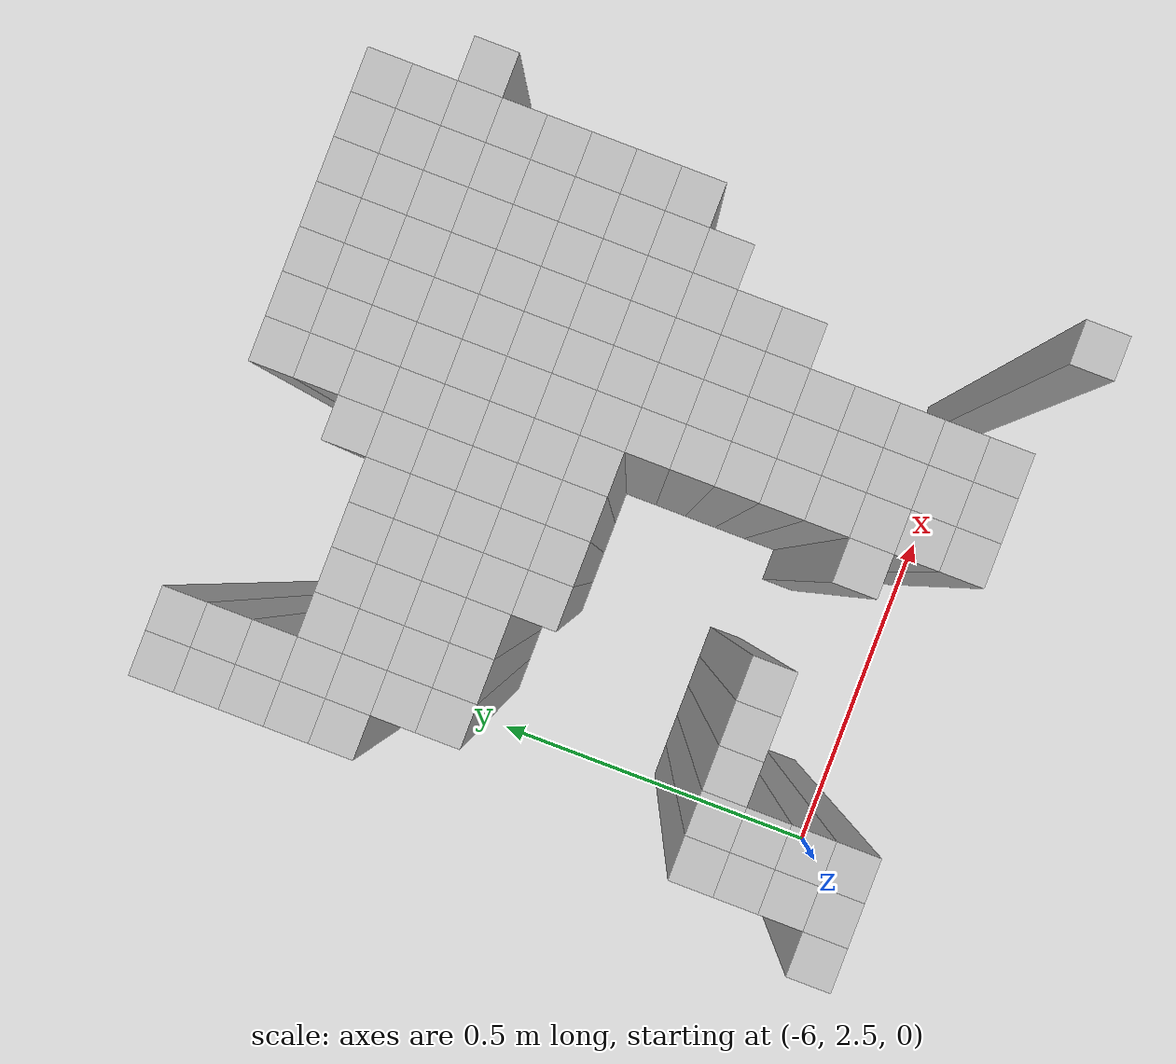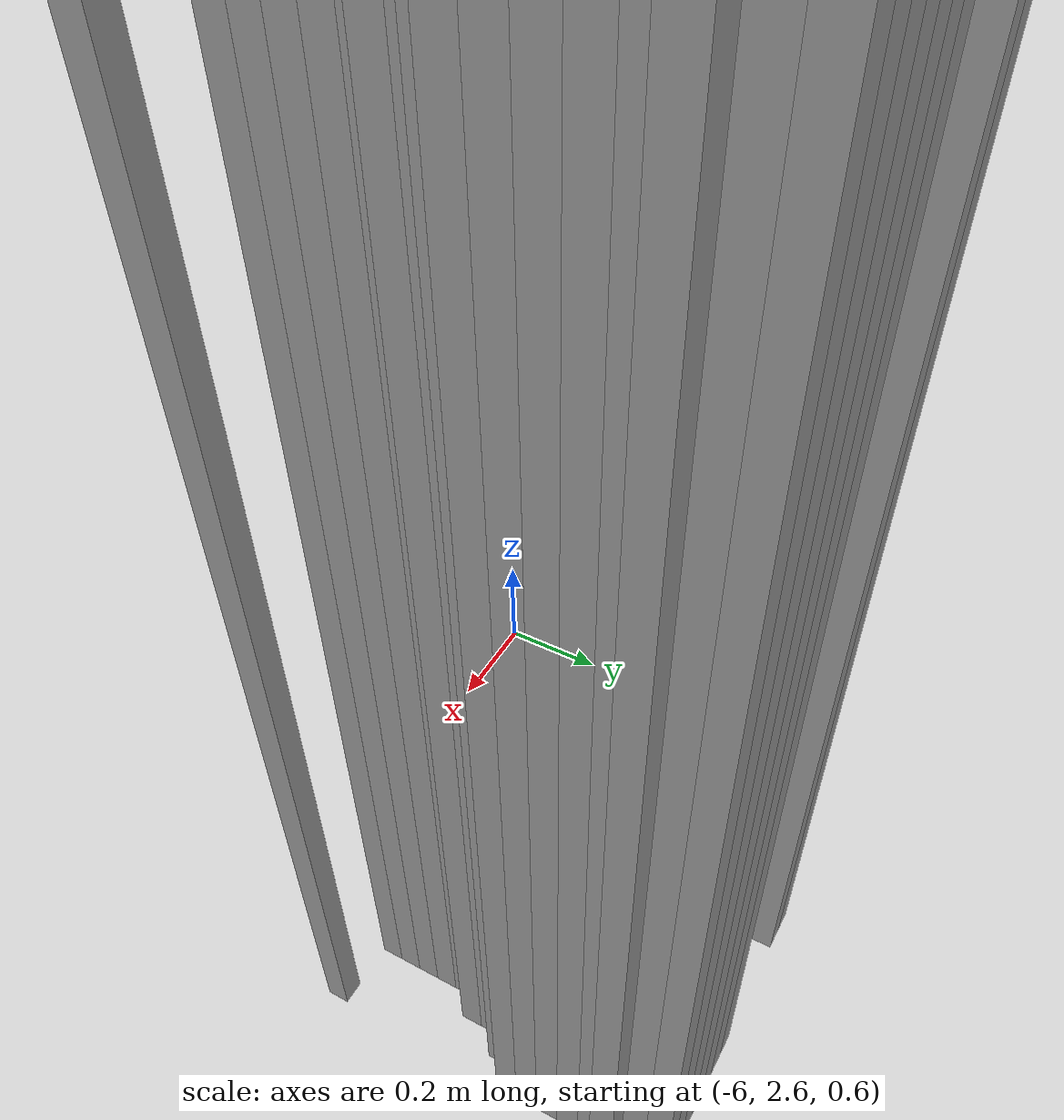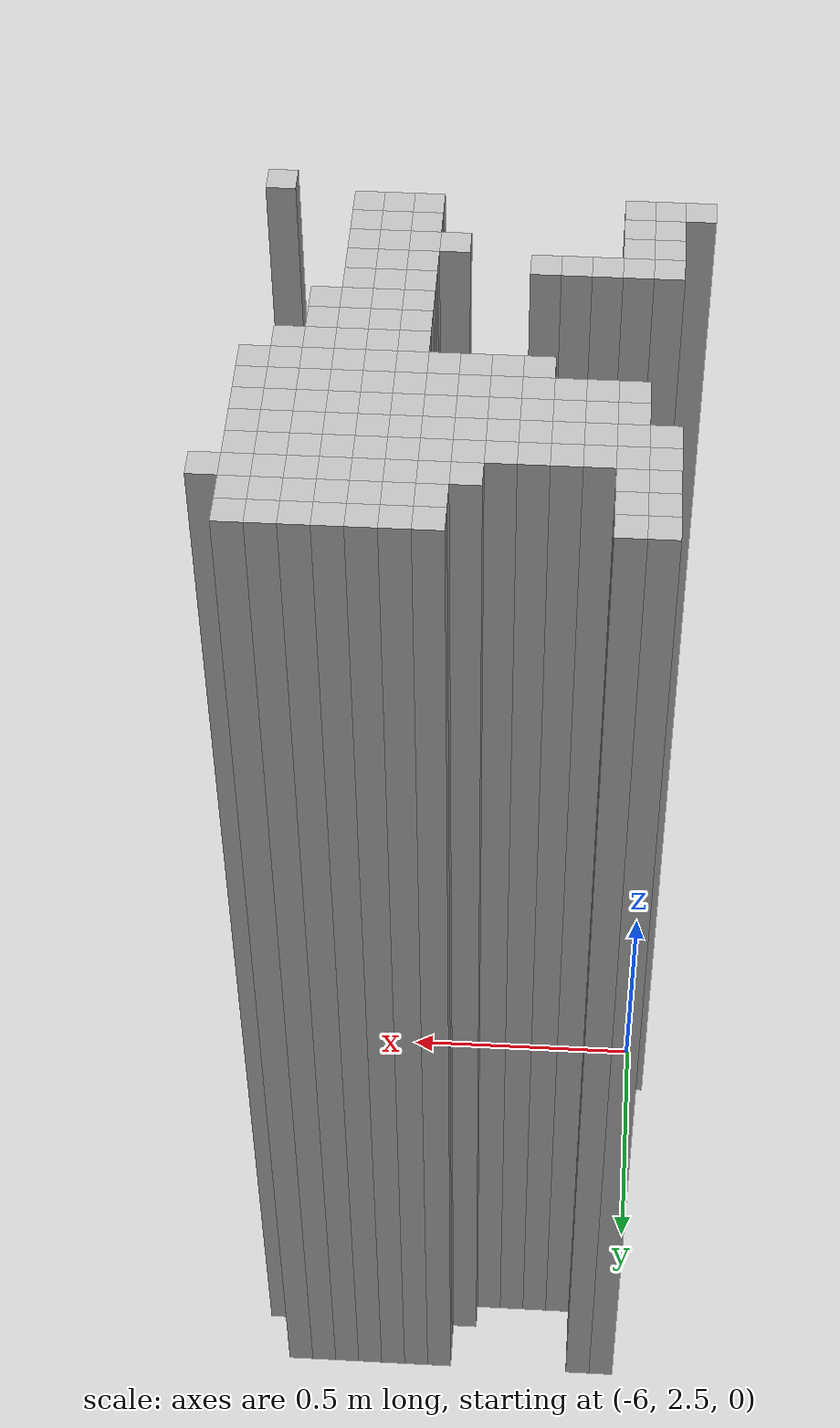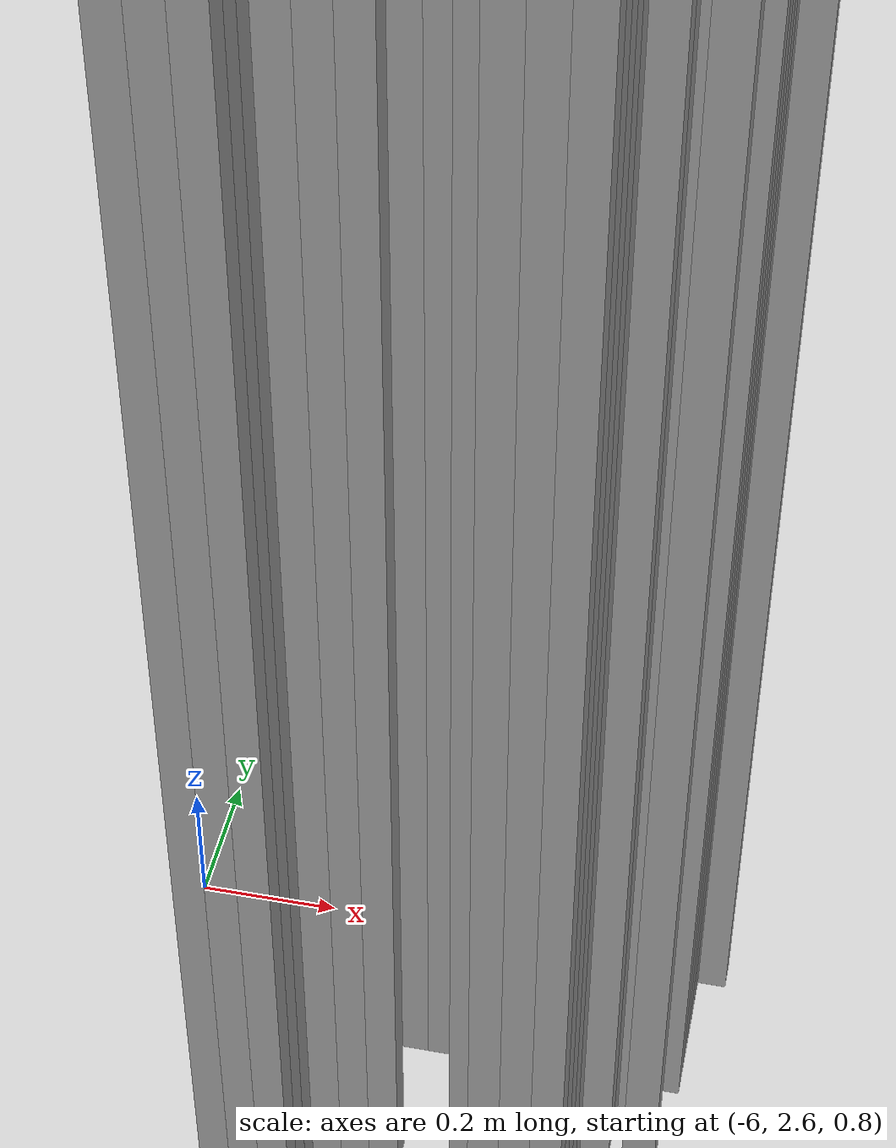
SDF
<sdf version="1.9">
 <world name="map_world">
  <model name="wall_104_87">
   <static>true</static>
   <pose>-5.961 3.330 1.250 0 0 0</pose>
   <link name="link">
    <collision name="collision"><geometry><box><size>0.050 0.050 2.500</size></box></geometry></collision>
    <visual name="visual"><geometry><box><size>0.050 0.050 2.500</size></box></geometry></visual>
   </link>
  </model>
  <model name="wall_105_87">
   <static>true</static>
   <pose>-5.911 3.330 1.250 0 0 0</pose>
   <link name="link">
    <collision name="collision"><geometry><box><size>0.050 0.050 2.500</size></box></geometry></collision>
    <visual name="visual"><geometry><box><size>0.050 0.050 2.500</size></box></geometry></visual>
   </link>
  </model>
  <model name="wall_111_87">
   <static>true</static>
   <pose>-5.611 3.330 1.250 0 0 0</pose>
   <link name="link">
    <collision name="collision"><geometry><box><size>0.050 0.050 2.500</size></box></geometry></collision>
    <visual name="visual"><geometry><box><size>0.050 0.050 2.500</size></box></geometry></visual>
   </link>
  </model>
  <model name="wall_112_87">
   <static>true</static>
   <pose>-5.561 3.330 1.250 0 0 0</pose>
   <link name="link">
    <collision name="collision"><geometry><box><size>0.050 0.050 2.500</size></box></geometry></collision>
    <visual name="visual"><geometry><box><size>0.050 0.050 2.500</size></box></geometry></visual>
   </link>
  </model>
  <model name="wall_113_87">
   <static>true</static>
   <pose>-5.511 3.330 1.250 0 0 0</pose>
   <link name="link">
    <collision name="collision"><geometry><box><size>0.050 0.050 2.500</size></box></geometry></collision>
    <visual name="visual"><geometry><box><size>0.050 0.050 2.500</size></box></geometry></visual>
   </link>
  </model>
  <model name="wall_114_87">
   <static>true</static>
   <pose>-5.461 3.330 1.250 0 0 0</pose>
   <link name="link">
    <collision name="collision"><geometry><box><size>0.050 0.050 2.500</size></box></geometry></collision>
    <visual name="visual"><geometry><box><size>0.050 0.050 2.500</size></box></geometry></visual>
   </link>
  </model>
  <model name="wall_115_87">
   <static>true</static>
   <pose>-5.411 3.330 1.250 0 0 0</pose>
   <link name="link">
    <collision name="collision"><geometry><box><size>0.050 0.050 2.500</size></box></geometry></collision>
    <visual name="visual"><geometry><box><size>0.050 0.050 2.500</size></box></geometry></visual>
   </link>
  </model>
  <model name="wall_116_87">
   <static>true</static>
   <pose>-5.361 3.330 1.250 0 0 0</pose>
   <link name="link">
    <collision name="collision"><geometry><box><size>0.050 0.050 2.500</size></box></geometry></collision>
    <visual name="visual"><geometry><box><size>0.050 0.050 2.500</size></box></geometry></visual>
   </link>
  </model>
  <model name="wall_117_87">
   <static>true</static>
   <pose>-5.311 3.330 1.250 0 0 0</pose>
   <link name="link">
    <collision name="collision"><geometry><box><size>0.050 0.050 2.500</size></box></geometry></collision>
    <visual name="visual"><geometry><box><size>0.050 0.050 2.500</size></box></geometry></visual>
   </link>
  </model>
  <model name="wall_104_88">
   <static>true</static>
   <pose>-5.961 3.280 1.250 0 0 0</pose>
   <link name="link">
    <collision name="collision"><geometry><box><size>0.050 0.050 2.500</size></box></geometry></collision>
    <visual name="visual"><geometry><box><size>0.050 0.050 2.500</size></box></geometry></visual>
   </link>
  </model>
  <model name="wall_105_88">
   <static>true</static>
   <pose>-5.911 3.280 1.250 0 0 0</pose>
   <link name="link">
    <collision name="collision"><geometry><box><size>0.050 0.050 2.500</size></box></geometry></collision>
    <visual name="visual"><geometry><box><size>0.050 0.050 2.500</size></box></geometry></visual>
   </link>
  </model>
  <model name="wall_111_88">
   <static>true</static>
   <pose>-5.611 3.280 1.250 0 0 0</pose>
   <link name="link">
    <collision name="collision"><geometry><box><size>0.050 0.050 2.500</size></box></geometry></collision>
    <visual name="visual"><geometry><box><size>0.050 0.050 2.500</size></box></geometry></visual>
   </link>
  </model>
  <model name="wall_112_88">
   <static>true</static>
   <pose>-5.561 3.280 1.250 0 0 0</pose>
   <link name="link">
    <collision name="collision"><geometry><box><size>0.050 0.050 2.500</size></box></geometry></collision>
    <visual name="visual"><geometry><box><size>0.050 0.050 2.500</size></box></geometry></visual>
   </link>
  </model>
  <model name="wall_113_88">
   <static>true</static>
   <pose>-5.511 3.280 1.250 0 0 0</pose>
   <link name="link">
    <collision name="collision"><geometry><box><size>0.050 0.050 2.500</size></box></geometry></collision>
    <visual name="visual"><geometry><box><size>0.050 0.050 2.500</size></box></geometry></visual>
   </link>
  </model>
  <model name="wall_114_88">
   <static>true</static>
   <pose>-5.461 3.280 1.250 0 0 0</pose>
   <link name="link">
    <collision name="collision"><geometry><box><size>0.050 0.050 2.500</size></box></geometry></collision>
    <visual name="visual"><geometry><box><size>0.050 0.050 2.500</size></box></geometry></visual>
   </link>
  </model>
  <model name="wall_115_88">
   <static>true</static>
   <pose>-5.411 3.280 1.250 0 0 0</pose>
   <link name="link">
    <collision name="collision"><geometry><box><size>0.050 0.050 2.500</size></box></geometry></collision>
    <visual name="visual"><geometry><box><size>0.050 0.050 2.500</size></box></geometry></visual>
   </link>
  </model>
  <model name="wall_116_88">
   <static>true</static>
   <pose>-5.361 3.280 1.250 0 0 0</pose>
   <link name="link">
    <collision name="collision"><geometry><box><size>0.050 0.050 2.500</size></box></geometry></collision>
    <visual name="visual"><geometry><box><size>0.050 0.050 2.500</size></box></geometry></visual>
   </link>
  </model>
  <model name="wall_117_88">
   <static>true</static>
   <pose>-5.311 3.280 1.250 0 0 0</pose>
   <link name="link">
    <collision name="collision"><geometry><box><size>0.050 0.050 2.500</size></box></geometry></collision>
    <visual name="visual"><geometry><box><size>0.050 0.050 2.500</size></box></geometry></visual>
   </link>
  </model>
  <model name="wall_104_89">
   <static>true</static>
   <pose>-5.961 3.230 1.250 0 0 0</pose>
   <link name="link">
    <collision name="collision"><geometry><box><size>0.050 0.050 2.500</size></box></geometry></collision>
    <visual name="visual"><geometry><box><size>0.050 0.050 2.500</size></box></geometry></visual>
   </link>
  </model>
  <model name="wall_105_89">
   <static>true</static>
   <pose>-5.911 3.230 1.250 0 0 0</pose>
   <link name="link">
    <collision name="collision"><geometry><box><size>0.050 0.050 2.500</size></box></geometry></collision>
    <visual name="visual"><geometry><box><size>0.050 0.050 2.500</size></box></geometry></visual>
   </link>
  </model>
  <model name="wall_110_89">
   <static>true</static>
   <pose>-5.661 3.230 1.250 0 0 0</pose>
   <link name="link">
    <collision name="collision"><geometry><box><size>0.050 0.050 2.500</size></box></geometry></collision>
    <visual name="visual"><geometry><box><size>0.050 0.050 2.500</size></box></geometry></visual>
   </link>
  </model>
  <model name="wall_111_89">
   <static>true</static>
   <pose>-5.611 3.230 1.250 0 0 0</pose>
   <link name="link">
    <collision name="collision"><geometry><box><size>0.050 0.050 2.500</size></box></geometry></collision>
    <visual name="visual"><geometry><box><size>0.050 0.050 2.500</size></box></geometry></visual>
   </link>
  </model>
  <model name="wall_112_89">
   <static>true</static>
   <pose>-5.561 3.230 1.250 0 0 0</pose>
   <link name="link">
    <collision name="collision"><geometry><box><size>0.050 0.050 2.500</size></box></geometry></collision>
    <visual name="visual"><geometry><box><size>0.050 0.050 2.500</size></box></geometry></visual>
   </link>
  </model>
  <model name="wall_113_89">
   <static>true</static>
   <pose>-5.511 3.230 1.250 0 0 0</pose>
   <link name="link">
    <collision name="collision"><geometry><box><size>0.050 0.050 2.500</size></box></geometry></collision>
    <visual name="visual"><geometry><box><size>0.050 0.050 2.500</size></box></geometry></visual>
   </link>
  </model>
  <model name="wall_114_89">
   <static>true</static>
   <pose>-5.461 3.230 1.250 0 0 0</pose>
   <link name="link">
    <collision name="collision"><geometry><box><size>0.050 0.050 2.500</size></box></geometry></collision>
    <visual name="visual"><geometry><box><size>0.050 0.050 2.500</size></box></geometry></visual>
   </link>
  </model>
  <model name="wall_115_89">
   <static>true</static>
   <pose>-5.411 3.230 1.250 0 0 0</pose>
   <link name="link">
    <collision name="collision"><geometry><box><size>0.050 0.050 2.500</size></box></geometry></collision>
    <visual name="visual"><geometry><box><size>0.050 0.050 2.500</size></box></geometry></visual>
   </link>
  </model>
  <model name="wall_116_89">
   <static>true</static>
   <pose>-5.361 3.230 1.250 0 0 0</pose>
   <link name="link">
    <collision name="collision"><geometry><box><size>0.050 0.050 2.500</size></box></geometry></collision>
    <visual name="visual"><geometry><box><size>0.050 0.050 2.500</size></box></geometry></visual>
   </link>
  </model>
  <model name="wall_117_89">
   <static>true</static>
   <pose>-5.311 3.230 1.250 0 0 0</pose>
   <link name="link">
    <collision name="collision"><geometry><box><size>0.050 0.050 2.500</size></box></geometry></collision>
    <visual name="visual"><geometry><box><size>0.050 0.050 2.500</size></box></geometry></visual>
   </link>
  </model>
  <model name="wall_118_89">
   <static>true</static>
   <pose>-5.261 3.230 1.250 0 0 0</pose>
   <link name="link">
    <collision name="collision"><geometry><box><size>0.050 0.050 2.500</size></box></geometry></collision>
    <visual name="visual"><geometry><box><size>0.050 0.050 2.500</size></box></geometry></visual>
   </link>
  </model>
  <model name="wall_104_90">
   <static>true</static>
   <pose>-5.961 3.180 1.250 0 0 0</pose>
   <link name="link">
    <collision name="collision"><geometry><box><size>0.050 0.050 2.500</size></box></geometry></collision>
    <visual name="visual"><geometry><box><size>0.050 0.050 2.500</size></box></geometry></visual>
   </link>
  </model>
  <model name="wall_105_90">
   <static>true</static>
   <pose>-5.911 3.180 1.250 0 0 0</pose>
   <link name="link">
    <collision name="collision"><geometry><box><size>0.050 0.050 2.500</size></box></geometry></collision>
    <visual name="visual"><geometry><box><size>0.050 0.050 2.500</size></box></geometry></visual>
   </link>
  </model>
  <model name="wall_106_90">
   <static>true</static>
   <pose>-5.861 3.180 1.250 0 0 0</pose>
   <link name="link">
    <collision name="collision"><geometry><box><size>0.050 0.050 2.500</size></box></geometry></collision>
    <visual name="visual"><geometry><box><size>0.050 0.050 2.500</size></box></geometry></visual>
   </link>
  </model>
  <model name="wall_107_90">
   <static>true</static>
   <pose>-5.811 3.180 1.250 0 0 0</pose>
   <link name="link">
    <collision name="collision"><geometry><box><size>0.050 0.050 2.500</size></box></geometry></collision>
    <visual name="visual"><geometry><box><size>0.050 0.050 2.500</size></box></geometry></visual>
   </link>
  </model>
  <model name="wall_108_90">
   <static>true</static>
   <pose>-5.761 3.180 1.250 0 0 0</pose>
   <link name="link">
    <collision name="collision"><geometry><box><size>0.050 0.050 2.500</size></box></geometry></collision>
    <visual name="visual"><geometry><box><size>0.050 0.050 2.500</size></box></geometry></visual>
   </link>
  </model>
  <model name="wall_109_90">
   <static>true</static>
   <pose>-5.711 3.180 1.250 0 0 0</pose>
   <link name="link">
    <collision name="collision"><geometry><box><size>0.050 0.050 2.500</size></box></geometry></collision>
    <visual name="visual"><geometry><box><size>0.050 0.050 2.500</size></box></geometry></visual>
   </link>
  </model>
  <model name="wall_110_90">
   <static>true</static>
   <pose>-5.661 3.180 1.250 0 0 0</pose>
   <link name="link">
    <collision name="collision"><geometry><box><size>0.050 0.050 2.500</size></box></geometry></collision>
    <visual name="visual"><geometry><box><size>0.050 0.050 2.500</size></box></geometry></visual>
   </link>
  </model>
  <model name="wall_111_90">
   <static>true</static>
   <pose>-5.611 3.180 1.250 0 0 0</pose>
   <link name="link">
    <collision name="collision"><geometry><box><size>0.050 0.050 2.500</size></box></geometry></collision>
    <visual name="visual"><geometry><box><size>0.050 0.050 2.500</size></box></geometry></visual>
   </link>
  </model>
  <model name="wall_112_90">
   <static>true</static>
   <pose>-5.561 3.180 1.250 0 0 0</pose>
   <link name="link">
    <collision name="collision"><geometry><box><size>0.050 0.050 2.500</size></box></geometry></collision>
    <visual name="visual"><geometry><box><size>0.050 0.050 2.500</size></box></geometry></visual>
   </link>
  </model>
  <model name="wall_113_90">
   <static>true</static>
   <pose>-5.511 3.180 1.250 0 0 0</pose>
   <link name="link">
    <collision name="collision"><geometry><box><size>0.050 0.050 2.500</size></box></geometry></collision>
    <visual name="visual"><geometry><box><size>0.050 0.050 2.500</size></box></geometry></visual>
   </link>
  </model>
  <model name="wall_114_90">
   <static>true</static>
   <pose>-5.461 3.180 1.250 0 0 0</pose>
   <link name="link">
    <collision name="collision"><geometry><box><size>0.050 0.050 2.500</size></box></geometry></collision>
    <visual name="visual"><geometry><box><size>0.050 0.050 2.500</size></box></geometry></visual>
   </link>
  </model>
  <model name="wall_115_90">
   <static>true</static>
   <pose>-5.411 3.180 1.250 0 0 0</pose>
   <link name="link">
    <collision name="collision"><geometry><box><size>0.050 0.050 2.500</size></box></geometry></collision>
    <visual name="visual"><geometry><box><size>0.050 0.050 2.500</size></box></geometry></visual>
   </link>
  </model>
  <model name="wall_116_90">
   <static>true</static>
   <pose>-5.361 3.180 1.250 0 0 0</pose>
   <link name="link">
    <collision name="collision"><geometry><box><size>0.050 0.050 2.500</size></box></geometry></collision>
    <visual name="visual"><geometry><box><size>0.050 0.050 2.500</size></box></geometry></visual>
   </link>
  </model>
  <model name="wall_117_90">
   <static>true</static>
   <pose>-5.311 3.180 1.250 0 0 0</pose>
   <link name="link">
    <collision name="collision"><geometry><box><size>0.050 0.050 2.500</size></box></geometry></collision>
    <visual name="visual"><geometry><box><size>0.050 0.050 2.500</size></box></geometry></visual>
   </link>
  </model>
  <model name="wall_104_91">
   <static>true</static>
   <pose>-5.961 3.130 1.250 0 0 0</pose>
   <link name="link">
    <collision name="collision"><geometry><box><size>0.050 0.050 2.500</size></box></geometry></collision>
    <visual name="visual"><geometry><box><size>0.050 0.050 2.500</size></box></geometry></visual>
   </link>
  </model>
  <model name="wall_105_91">
   <static>true</static>
   <pose>-5.911 3.130 1.250 0 0 0</pose>
   <link name="link">
    <collision name="collision"><geometry><box><size>0.050 0.050 2.500</size></box></geometry></collision>
    <visual name="visual"><geometry><box><size>0.050 0.050 2.500</size></box></geometry></visual>
   </link>
  </model>
  <model name="wall_106_91">
   <static>true</static>
   <pose>-5.861 3.130 1.250 0 0 0</pose>
   <link name="link">
    <collision name="collision"><geometry><box><size>0.050 0.050 2.500</size></box></geometry></collision>
    <visual name="visual"><geometry><box><size>0.050 0.050 2.500</size></box></geometry></visual>
   </link>
  </model>
  <model name="wall_107_91">
   <static>true</static>
   <pose>-5.811 3.130 1.250 0 0 0</pose>
   <link name="link">
    <collision name="collision"><geometry><box><size>0.050 0.050 2.500</size></box></geometry></collision>
    <visual name="visual"><geometry><box><size>0.050 0.050 2.500</size></box></geometry></visual>
   </link>
  </model>
  <model name="wall_108_91">
   <static>true</static>
   <pose>-5.761 3.130 1.250 0 0 0</pose>
   <link name="link">
    <collision name="collision"><geometry><box><size>0.050 0.050 2.500</size></box></geometry></collision>
    <visual name="visual"><geometry><box><size>0.050 0.050 2.500</size></box></geometry></visual>
   </link>
  </model>
  <model name="wall_109_91">
   <static>true</static>
   <pose>-5.711 3.130 1.250 0 0 0</pose>
   <link name="link">
    <collision name="collision"><geometry><box><size>0.050 0.050 2.500</size></box></geometry></collision>
    <visual name="visual"><geometry><box><size>0.050 0.050 2.500</size></box></geometry></visual>
   </link>
  </model>
  <model name="wall_110_91">
   <static>true</static>
   <pose>-5.661 3.130 1.250 0 0 0</pose>
   <link name="link">
    <collision name="collision"><geometry><box><size>0.050 0.050 2.500</size></box></geometry></collision>
    <visual name="visual"><geometry><box><size>0.050 0.050 2.500</size></box></geometry></visual>
   </link>
  </model>
  <model name="wall_111_91">
   <static>true</static>
   <pose>-5.611 3.130 1.250 0 0 0</pose>
   <link name="link">
    <collision name="collision"><geometry><box><size>0.050 0.050 2.500</size></box></geometry></collision>
    <visual name="visual"><geometry><box><size>0.050 0.050 2.500</size></box></geometry></visual>
   </link>
  </model>
  <model name="wall_112_91">
   <static>true</static>
   <pose>-5.561 3.130 1.250 0 0 0</pose>
   <link name="link">
    <collision name="collision"><geometry><box><size>0.050 0.050 2.500</size></box></geometry></collision>
    <visual name="visual"><geometry><box><size>0.050 0.050 2.500</size></box></geometry></visual>
   </link>
  </model>
  <model name="wall_113_91">
   <static>true</static>
   <pose>-5.511 3.130 1.250 0 0 0</pose>
   <link name="link">
    <collision name="collision"><geometry><box><size>0.050 0.050 2.500</size></box></geometry></collision>
    <visual name="visual"><geometry><box><size>0.050 0.050 2.500</size></box></geometry></visual>
   </link>
  </model>
  <model name="wall_114_91">
   <static>true</static>
   <pose>-5.461 3.130 1.250 0 0 0</pose>
   <link name="link">
    <collision name="collision"><geometry><box><size>0.050 0.050 2.500</size></box></geometry></collision>
    <visual name="visual"><geometry><box><size>0.050 0.050 2.500</size></box></geometry></visual>
   </link>
  </model>
  <model name="wall_115_91">
   <static>true</static>
   <pose>-5.411 3.130 1.250 0 0 0</pose>
   <link name="link">
    <collision name="collision"><geometry><box><size>0.050 0.050 2.500</size></box></geometry></collision>
    <visual name="visual"><geometry><box><size>0.050 0.050 2.500</size></box></geometry></visual>
   </link>
  </model>
  <model name="wall_116_91">
   <static>true</static>
   <pose>-5.361 3.130 1.250 0 0 0</pose>
   <link name="link">
    <collision name="collision"><geometry><box><size>0.050 0.050 2.500</size></box></geometry></collision>
    <visual name="visual"><geometry><box><size>0.050 0.050 2.500</size></box></geometry></visual>
   </link>
  </model>
  <model name="wall_117_91">
   <static>true</static>
   <pose>-5.311 3.130 1.250 0 0 0</pose>
   <link name="link">
    <collision name="collision"><geometry><box><size>0.050 0.050 2.500</size></box></geometry></collision>
    <visual name="visual"><geometry><box><size>0.050 0.050 2.500</size></box></geometry></visual>
   </link>
  </model>
  <model name="wall_105_92">
   <static>true</static>
   <pose>-5.911 3.080 1.250 0 0 0</pose>
   <link name="link">
    <collision name="collision"><geometry><box><size>0.050 0.050 2.500</size></box></geometry></collision>
    <visual name="visual"><geometry><box><size>0.050 0.050 2.500</size></box></geometry></visual>
   </link>
  </model>
  <model name="wall_106_92">
   <static>true</static>
   <pose>-5.861 3.080 1.250 0 0 0</pose>
   <link name="link">
    <collision name="collision"><geometry><box><size>0.050 0.050 2.500</size></box></geometry></collision>
    <visual name="visual"><geometry><box><size>0.050 0.050 2.500</size></box></geometry></visual>
   </link>
  </model>
  <model name="wall_107_92">
   <static>true</static>
   <pose>-5.811 3.080 1.250 0 0 0</pose>
   <link name="link">
    <collision name="collision"><geometry><box><size>0.050 0.050 2.500</size></box></geometry></collision>
    <visual name="visual"><geometry><box><size>0.050 0.050 2.500</size></box></geometry></visual>
   </link>
  </model>
  <model name="wall_108_92">
   <static>true</static>
   <pose>-5.761 3.080 1.250 0 0 0</pose>
   <link name="link">
    <collision name="collision"><geometry><box><size>0.050 0.050 2.500</size></box></geometry></collision>
    <visual name="visual"><geometry><box><size>0.050 0.050 2.500</size></box></geometry></visual>
   </link>
  </model>
  <model name="wall_109_92">
   <static>true</static>
   <pose>-5.711 3.080 1.250 0 0 0</pose>
   <link name="link">
    <collision name="collision"><geometry><box><size>0.050 0.050 2.500</size></box></geometry></collision>
    <visual name="visual"><geometry><box><size>0.050 0.050 2.500</size></box></geometry></visual>
   </link>
  </model>
  <model name="wall_110_92">
   <static>true</static>
   <pose>-5.661 3.080 1.250 0 0 0</pose>
   <link name="link">
    <collision name="collision"><geometry><box><size>0.050 0.050 2.500</size></box></geometry></collision>
    <visual name="visual"><geometry><box><size>0.050 0.050 2.500</size></box></geometry></visual>
   </link>
  </model>
  <model name="wall_111_92">
   <static>true</static>
   <pose>-5.611 3.080 1.250 0 0 0</pose>
   <link name="link">
    <collision name="collision"><geometry><box><size>0.050 0.050 2.500</size></box></geometry></collision>
    <visual name="visual"><geometry><box><size>0.050 0.050 2.500</size></box></geometry></visual>
   </link>
  </model>
  <model name="wall_112_92">
   <static>true</static>
   <pose>-5.561 3.080 1.250 0 0 0</pose>
   <link name="link">
    <collision name="collision"><geometry><box><size>0.050 0.050 2.500</size></box></geometry></collision>
    <visual name="visual"><geometry><box><size>0.050 0.050 2.500</size></box></geometry></visual>
   </link>
  </model>
  <model name="wall_113_92">
   <static>true</static>
   <pose>-5.511 3.080 1.250 0 0 0</pose>
   <link name="link">
    <collision name="collision"><geometry><box><size>0.050 0.050 2.500</size></box></geometry></collision>
    <visual name="visual"><geometry><box><size>0.050 0.050 2.500</size></box></geometry></visual>
   </link>
  </model>
  <model name="wall_114_92">
   <static>true</static>
   <pose>-5.461 3.080 1.250 0 0 0</pose>
   <link name="link">
    <collision name="collision"><geometry><box><size>0.050 0.050 2.500</size></box></geometry></collision>
    <visual name="visual"><geometry><box><size>0.050 0.050 2.500</size></box></geometry></visual>
   </link>
  </model>
  <model name="wall_115_92">
   <static>true</static>
   <pose>-5.411 3.080 1.250 0 0 0</pose>
   <link name="link">
    <collision name="collision"><geometry><box><size>0.050 0.050 2.500</size></box></geometry></collision>
    <visual name="visual"><geometry><box><size>0.050 0.050 2.500</size></box></geometry></visual>
   </link>
  </model>
  <model name="wall_116_92">
   <static>true</static>
   <pose>-5.361 3.080 1.250 0 0 0</pose>
   <link name="link">
    <collision name="collision"><geometry><box><size>0.050 0.050 2.500</size></box></geometry></collision>
    <visual name="visual"><geometry><box><size>0.050 0.050 2.500</size></box></geometry></visual>
   </link>
  </model>
  <model name="wall_117_92">
   <static>true</static>
   <pose>-5.311 3.080 1.250 0 0 0</pose>
   <link name="link">
    <collision name="collision"><geometry><box><size>0.050 0.050 2.500</size></box></geometry></collision>
    <visual name="visual"><geometry><box><size>0.050 0.050 2.500</size></box></geometry></visual>
   </link>
  </model>
  <model name="wall_105_93">
   <static>true</static>
   <pose>-5.911 3.030 1.250 0 0 0</pose>
   <link name="link">
    <collision name="collision"><geometry><box><size>0.050 0.050 2.500</size></box></geometry></collision>
    <visual name="visual"><geometry><box><size>0.050 0.050 2.500</size></box></geometry></visual>
   </link>
  </model>
  <model name="wall_106_93">
   <static>true</static>
   <pose>-5.861 3.030 1.250 0 0 0</pose>
   <link name="link">
    <collision name="collision"><geometry><box><size>0.050 0.050 2.500</size></box></geometry></collision>
    <visual name="visual"><geometry><box><size>0.050 0.050 2.500</size></box></geometry></visual>
   </link>
  </model>
  <model name="wall_107_93">
   <static>true</static>
   <pose>-5.811 3.030 1.250 0 0 0</pose>
   <link name="link">
    <collision name="collision"><geometry><box><size>0.050 0.050 2.500</size></box></geometry></collision>
    <visual name="visual"><geometry><box><size>0.050 0.050 2.500</size></box></geometry></visual>
   </link>
  </model>
  <model name="wall_108_93">
   <static>true</static>
   <pose>-5.761 3.030 1.250 0 0 0</pose>
   <link name="link">
    <collision name="collision"><geometry><box><size>0.050 0.050 2.500</size></box></geometry></collision>
    <visual name="visual"><geometry><box><size>0.050 0.050 2.500</size></box></geometry></visual>
   </link>
  </model>
  <model name="wall_109_93">
   <static>true</static>
   <pose>-5.711 3.030 1.250 0 0 0</pose>
   <link name="link">
    <collision name="collision"><geometry><box><size>0.050 0.050 2.500</size></box></geometry></collision>
    <visual name="visual"><geometry><box><size>0.050 0.050 2.500</size></box></geometry></visual>
   </link>
  </model>
  <model name="wall_110_93">
   <static>true</static>
   <pose>-5.661 3.030 1.250 0 0 0</pose>
   <link name="link">
    <collision name="collision"><geometry><box><size>0.050 0.050 2.500</size></box></geometry></collision>
    <visual name="visual"><geometry><box><size>0.050 0.050 2.500</size></box></geometry></visual>
   </link>
  </model>
  <model name="wall_111_93">
   <static>true</static>
   <pose>-5.611 3.030 1.250 0 0 0</pose>
   <link name="link">
    <collision name="collision"><geometry><box><size>0.050 0.050 2.500</size></box></geometry></collision>
    <visual name="visual"><geometry><box><size>0.050 0.050 2.500</size></box></geometry></visual>
   </link>
  </model>
  <model name="wall_112_93">
   <static>true</static>
   <pose>-5.561 3.030 1.250 0 0 0</pose>
   <link name="link">
    <collision name="collision"><geometry><box><size>0.050 0.050 2.500</size></box></geometry></collision>
    <visual name="visual"><geometry><box><size>0.050 0.050 2.500</size></box></geometry></visual>
   </link>
  </model>
  <model name="wall_113_93">
   <static>true</static>
   <pose>-5.511 3.030 1.250 0 0 0</pose>
   <link name="link">
    <collision name="collision"><geometry><box><size>0.050 0.050 2.500</size></box></geometry></collision>
    <visual name="visual"><geometry><box><size>0.050 0.050 2.500</size></box></geometry></visual>
   </link>
  </model>
  <model name="wall_114_93">
   <static>true</static>
   <pose>-5.461 3.030 1.250 0 0 0</pose>
   <link name="link">
    <collision name="collision"><geometry><box><size>0.050 0.050 2.500</size></box></geometry></collision>
    <visual name="visual"><geometry><box><size>0.050 0.050 2.500</size></box></geometry></visual>
   </link>
  </model>
  <model name="wall_115_93">
   <static>true</static>
   <pose>-5.411 3.030 1.250 0 0 0</pose>
   <link name="link">
    <collision name="collision"><geometry><box><size>0.050 0.050 2.500</size></box></geometry></collision>
    <visual name="visual"><geometry><box><size>0.050 0.050 2.500</size></box></geometry></visual>
   </link>
  </model>
  <model name="wall_116_93">
   <static>true</static>
   <pose>-5.361 3.030 1.250 0 0 0</pose>
   <link name="link">
    <collision name="collision"><geometry><box><size>0.050 0.050 2.500</size></box></geometry></collision>
    <visual name="visual"><geometry><box><size>0.050 0.050 2.500</size></box></geometry></visual>
   </link>
  </model>
  <model name="wall_117_93">
   <static>true</static>
   <pose>-5.311 3.030 1.250 0 0 0</pose>
   <link name="link">
    <collision name="collision"><geometry><box><size>0.050 0.050 2.500</size></box></geometry></collision>
    <visual name="visual"><geometry><box><size>0.050 0.050 2.500</size></box></geometry></visual>
   </link>
  </model>
  <model name="wall_108_94">
   <static>true</static>
   <pose>-5.761 2.980 1.250 0 0 0</pose>
   <link name="link">
    <collision name="collision"><geometry><box><size>0.050 0.050 2.500</size></box></geometry></collision>
    <visual name="visual"><geometry><box><size>0.050 0.050 2.500</size></box></geometry></visual>
   </link>
  </model>
  <model name="wall_109_94">
   <static>true</static>
   <pose>-5.711 2.980 1.250 0 0 0</pose>
   <link name="link">
    <collision name="collision"><geometry><box><size>0.050 0.050 2.500</size></box></geometry></collision>
    <visual name="visual"><geometry><box><size>0.050 0.050 2.500</size></box></geometry></visual>
   </link>
  </model>
  <model name="wall_110_94">
   <static>true</static>
   <pose>-5.661 2.980 1.250 0 0 0</pose>
   <link name="link">
    <collision name="collision"><geometry><box><size>0.050 0.050 2.500</size></box></geometry></collision>
    <visual name="visual"><geometry><box><size>0.050 0.050 2.500</size></box></geometry></visual>
   </link>
  </model>
  <model name="wall_111_94">
   <static>true</static>
   <pose>-5.611 2.980 1.250 0 0 0</pose>
   <link name="link">
    <collision name="collision"><geometry><box><size>0.050 0.050 2.500</size></box></geometry></collision>
    <visual name="visual"><geometry><box><size>0.050 0.050 2.500</size></box></geometry></visual>
   </link>
  </model>
  <model name="wall_112_94">
   <static>true</static>
   <pose>-5.561 2.980 1.250 0 0 0</pose>
   <link name="link">
    <collision name="collision"><geometry><box><size>0.050 0.050 2.500</size></box></geometry></collision>
    <visual name="visual"><geometry><box><size>0.050 0.050 2.500</size></box></geometry></visual>
   </link>
  </model>
  <model name="wall_113_94">
   <static>true</static>
   <pose>-5.511 2.980 1.250 0 0 0</pose>
   <link name="link">
    <collision name="collision"><geometry><box><size>0.050 0.050 2.500</size></box></geometry></collision>
    <visual name="visual"><geometry><box><size>0.050 0.050 2.500</size></box></geometry></visual>
   </link>
  </model>
  <model name="wall_114_94">
   <static>true</static>
   <pose>-5.461 2.980 1.250 0 0 0</pose>
   <link name="link">
    <collision name="collision"><geometry><box><size>0.050 0.050 2.500</size></box></geometry></collision>
    <visual name="visual"><geometry><box><size>0.050 0.050 2.500</size></box></geometry></visual>
   </link>
  </model>
  <model name="wall_115_94">
   <static>true</static>
   <pose>-5.411 2.980 1.250 0 0 0</pose>
   <link name="link">
    <collision name="collision"><geometry><box><size>0.050 0.050 2.500</size></box></geometry></collision>
    <visual name="visual"><geometry><box><size>0.050 0.050 2.500</size></box></geometry></visual>
   </link>
  </model>
  <model name="wall_116_94">
   <static>true</static>
   <pose>-5.361 2.980 1.250 0 0 0</pose>
   <link name="link">
    <collision name="collision"><geometry><box><size>0.050 0.050 2.500</size></box></geometry></collision>
    <visual name="visual"><geometry><box><size>0.050 0.050 2.500</size></box></geometry></visual>
   </link>
  </model>
  <model name="wall_117_94">
   <static>true</static>
   <pose>-5.311 2.980 1.250 0 0 0</pose>
   <link name="link">
    <collision name="collision"><geometry><box><size>0.050 0.050 2.500</size></box></geometry></collision>
    <visual name="visual"><geometry><box><size>0.050 0.050 2.500</size></box></geometry></visual>
   </link>
  </model>
  <model name="wall_112_95">
   <static>true</static>
   <pose>-5.561 2.930 1.250 0 0 0</pose>
   <link name="link">
    <collision name="collision"><geometry><box><size>0.050 0.050 2.500</size></box></geometry></collision>
    <visual name="visual"><geometry><box><size>0.050 0.050 2.500</size></box></geometry></visual>
   </link>
  </model>
  <model name="wall_113_95">
   <static>true</static>
   <pose>-5.511 2.930 1.250 0 0 0</pose>
   <link name="link">
    <collision name="collision"><geometry><box><size>0.050 0.050 2.500</size></box></geometry></collision>
    <visual name="visual"><geometry><box><size>0.050 0.050 2.500</size></box></geometry></visual>
   </link>
  </model>
  <model name="wall_114_95">
   <static>true</static>
   <pose>-5.461 2.930 1.250 0 0 0</pose>
   <link name="link">
    <collision name="collision"><geometry><box><size>0.050 0.050 2.500</size></box></geometry></collision>
    <visual name="visual"><geometry><box><size>0.050 0.050 2.500</size></box></geometry></visual>
   </link>
  </model>
  <model name="wall_115_95">
   <static>true</static>
   <pose>-5.411 2.930 1.250 0 0 0</pose>
   <link name="link">
    <collision name="collision"><geometry><box><size>0.050 0.050 2.500</size></box></geometry></collision>
    <visual name="visual"><geometry><box><size>0.050 0.050 2.500</size></box></geometry></visual>
   </link>
  </model>
  <model name="wall_116_95">
   <static>true</static>
   <pose>-5.361 2.930 1.250 0 0 0</pose>
   <link name="link">
    <collision name="collision"><geometry><box><size>0.050 0.050 2.500</size></box></geometry></collision>
    <visual name="visual"><geometry><box><size>0.050 0.050 2.500</size></box></geometry></visual>
   </link>
  </model>
  <model name="wall_112_96">
   <static>true</static>
   <pose>-5.561 2.880 1.250 0 0 0</pose>
   <link name="link">
    <collision name="collision"><geometry><box><size>0.050 0.050 2.500</size></box></geometry></collision>
    <visual name="visual"><geometry><box><size>0.050 0.050 2.500</size></box></geometry></visual>
   </link>
  </model>
  <model name="wall_113_96">
   <static>true</static>
   <pose>-5.511 2.880 1.250 0 0 0</pose>
   <link name="link">
    <collision name="collision"><geometry><box><size>0.050 0.050 2.500</size></box></geometry></collision>
    <visual name="visual"><geometry><box><size>0.050 0.050 2.500</size></box></geometry></visual>
   </link>
  </model>
  <model name="wall_114_96">
   <static>true</static>
   <pose>-5.461 2.880 1.250 0 0 0</pose>
   <link name="link">
    <collision name="collision"><geometry><box><size>0.050 0.050 2.500</size></box></geometry></collision>
    <visual name="visual"><geometry><box><size>0.050 0.050 2.500</size></box></geometry></visual>
   </link>
  </model>
  <model name="wall_115_96">
   <static>true</static>
   <pose>-5.411 2.880 1.250 0 0 0</pose>
   <link name="link">
    <collision name="collision"><geometry><box><size>0.050 0.050 2.500</size></box></geometry></collision>
    <visual name="visual"><geometry><box><size>0.050 0.050 2.500</size></box></geometry></visual>
   </link>
  </model>
  <model name="wall_112_97">
   <static>true</static>
   <pose>-5.561 2.830 1.250 0 0 0</pose>
   <link name="link">
    <collision name="collision"><geometry><box><size>0.050 0.050 2.500</size></box></geometry></collision>
    <visual name="visual"><geometry><box><size>0.050 0.050 2.500</size></box></geometry></visual>
   </link>
  </model>
  <model name="wall_113_97">
   <static>true</static>
   <pose>-5.511 2.830 1.250 0 0 0</pose>
   <link name="link">
    <collision name="collision"><geometry><box><size>0.050 0.050 2.500</size></box></geometry></collision>
    <visual name="visual"><geometry><box><size>0.050 0.050 2.500</size></box></geometry></visual>
   </link>
  </model>
  <model name="wall_114_97">
   <static>true</static>
   <pose>-5.461 2.830 1.250 0 0 0</pose>
   <link name="link">
    <collision name="collision"><geometry><box><size>0.050 0.050 2.500</size></box></geometry></collision>
    <visual name="visual"><geometry><box><size>0.050 0.050 2.500</size></box></geometry></visual>
   </link>
  </model>
  <model name="wall_115_97">
   <static>true</static>
   <pose>-5.411 2.830 1.250 0 0 0</pose>
   <link name="link">
    <collision name="collision"><geometry><box><size>0.050 0.050 2.500</size></box></geometry></collision>
    <visual name="visual"><geometry><box><size>0.050 0.050 2.500</size></box></geometry></visual>
   </link>
  </model>
  <model name="wall_112_98">
   <static>true</static>
   <pose>-5.561 2.780 1.250 0 0 0</pose>
   <link name="link">
    <collision name="collision"><geometry><box><size>0.050 0.050 2.500</size></box></geometry></collision>
    <visual name="visual"><geometry><box><size>0.050 0.050 2.500</size></box></geometry></visual>
   </link>
  </model>
  <model name="wall_113_98">
   <static>true</static>
   <pose>-5.511 2.780 1.250 0 0 0</pose>
   <link name="link">
    <collision name="collision"><geometry><box><size>0.050 0.050 2.500</size></box></geometry></collision>
    <visual name="visual"><geometry><box><size>0.050 0.050 2.500</size></box></geometry></visual>
   </link>
  </model>
  <model name="wall_114_98">
   <static>true</static>
   <pose>-5.461 2.780 1.250 0 0 0</pose>
   <link name="link">
    <collision name="collision"><geometry><box><size>0.050 0.050 2.500</size></box></geometry></collision>
    <visual name="visual"><geometry><box><size>0.050 0.050 2.500</size></box></geometry></visual>
   </link>
  </model>
  <model name="wall_104_99">
   <static>true</static>
   <pose>-5.961 2.730 1.250 0 0 0</pose>
   <link name="link">
    <collision name="collision"><geometry><box><size>0.050 0.050 2.500</size></box></geometry></collision>
    <visual name="visual"><geometry><box><size>0.050 0.050 2.500</size></box></geometry></visual>
   </link>
  </model>
  <model name="wall_105_99">
   <static>true</static>
   <pose>-5.911 2.730 1.250 0 0 0</pose>
   <link name="link">
    <collision name="collision"><geometry><box><size>0.050 0.050 2.500</size></box></geometry></collision>
    <visual name="visual"><geometry><box><size>0.050 0.050 2.500</size></box></geometry></visual>
   </link>
  </model>
  <model name="wall_106_99">
   <static>true</static>
   <pose>-5.861 2.730 1.250 0 0 0</pose>
   <link name="link">
    <collision name="collision"><geometry><box><size>0.050 0.050 2.500</size></box></geometry></collision>
    <visual name="visual"><geometry><box><size>0.050 0.050 2.500</size></box></geometry></visual>
   </link>
  </model>
  <model name="wall_107_99">
   <static>true</static>
   <pose>-5.811 2.730 1.250 0 0 0</pose>
   <link name="link">
    <collision name="collision"><geometry><box><size>0.050 0.050 2.500</size></box></geometry></collision>
    <visual name="visual"><geometry><box><size>0.050 0.050 2.500</size></box></geometry></visual>
   </link>
  </model>
  <model name="wall_108_99">
   <static>true</static>
   <pose>-5.761 2.730 1.250 0 0 0</pose>
   <link name="link">
    <collision name="collision"><geometry><box><size>0.050 0.050 2.500</size></box></geometry></collision>
    <visual name="visual"><geometry><box><size>0.050 0.050 2.500</size></box></geometry></visual>
   </link>
  </model>
  <model name="wall_112_99">
   <static>true</static>
   <pose>-5.561 2.730 1.250 0 0 0</pose>
   <link name="link">
    <collision name="collision"><geometry><box><size>0.050 0.050 2.500</size></box></geometry></collision>
    <visual name="visual"><geometry><box><size>0.050 0.050 2.500</size></box></geometry></visual>
   </link>
  </model>
  <model name="wall_113_99">
   <static>true</static>
   <pose>-5.511 2.730 1.250 0 0 0</pose>
   <link name="link">
    <collision name="collision"><geometry><box><size>0.050 0.050 2.500</size></box></geometry></collision>
    <visual name="visual"><geometry><box><size>0.050 0.050 2.500</size></box></geometry></visual>
   </link>
  </model>
  <model name="wall_114_99">
   <static>true</static>
   <pose>-5.461 2.730 1.250 0 0 0</pose>
   <link name="link">
    <collision name="collision"><geometry><box><size>0.050 0.050 2.500</size></box></geometry></collision>
    <visual name="visual"><geometry><box><size>0.050 0.050 2.500</size></box></geometry></visual>
   </link>
  </model>
  <model name="wall_104_100">
   <static>true</static>
   <pose>-5.961 2.680 1.250 0 0 0</pose>
   <link name="link">
    <collision name="collision"><geometry><box><size>0.050 0.050 2.500</size></box></geometry></collision>
    <visual name="visual"><geometry><box><size>0.050 0.050 2.500</size></box></geometry></visual>
   </link>
  </model>
  <model name="wall_105_100">
   <static>true</static>
   <pose>-5.911 2.680 1.250 0 0 0</pose>
   <link name="link">
    <collision name="collision"><geometry><box><size>0.050 0.050 2.500</size></box></geometry></collision>
    <visual name="visual"><geometry><box><size>0.050 0.050 2.500</size></box></geometry></visual>
   </link>
  </model>
  <model name="wall_111_100">
   <static>true</static>
   <pose>-5.611 2.680 1.250 0 0 0</pose>
   <link name="link">
    <collision name="collision"><geometry><box><size>0.050 0.050 2.500</size></box></geometry></collision>
    <visual name="visual"><geometry><box><size>0.050 0.050 2.500</size></box></geometry></visual>
   </link>
  </model>
  <model name="wall_112_100">
   <static>true</static>
   <pose>-5.561 2.680 1.250 0 0 0</pose>
   <link name="link">
    <collision name="collision"><geometry><box><size>0.050 0.050 2.500</size></box></geometry></collision>
    <visual name="visual"><geometry><box><size>0.050 0.050 2.500</size></box></geometry></visual>
   </link>
  </model>
  <model name="wall_113_100">
   <static>true</static>
   <pose>-5.511 2.680 1.250 0 0 0</pose>
   <link name="link">
    <collision name="collision"><geometry><box><size>0.050 0.050 2.500</size></box></geometry></collision>
    <visual name="visual"><geometry><box><size>0.050 0.050 2.500</size></box></geometry></visual>
   </link>
  </model>
  <model name="wall_114_100">
   <static>true</static>
   <pose>-5.461 2.680 1.250 0 0 0</pose>
   <link name="link">
    <collision name="collision"><geometry><box><size>0.050 0.050 2.500</size></box></geometry></collision>
    <visual name="visual"><geometry><box><size>0.050 0.050 2.500</size></box></geometry></visual>
   </link>
  </model>
  <model name="wall_104_101">
   <static>true</static>
   <pose>-5.961 2.630 1.250 0 0 0</pose>
   <link name="link">
    <collision name="collision"><geometry><box><size>0.050 0.050 2.500</size></box></geometry></collision>
    <visual name="visual"><geometry><box><size>0.050 0.050 2.500</size></box></geometry></visual>
   </link>
  </model>
  <model name="wall_105_101">
   <static>true</static>
   <pose>-5.911 2.630 1.250 0 0 0</pose>
   <link name="link">
    <collision name="collision"><geometry><box><size>0.050 0.050 2.500</size></box></geometry></collision>
    <visual name="visual"><geometry><box><size>0.050 0.050 2.500</size></box></geometry></visual>
   </link>
  </model>
  <model name="wall_112_101">
   <static>true</static>
   <pose>-5.561 2.630 1.250 0 0 0</pose>
   <link name="link">
    <collision name="collision"><geometry><box><size>0.050 0.050 2.500</size></box></geometry></collision>
    <visual name="visual"><geometry><box><size>0.050 0.050 2.500</size></box></geometry></visual>
   </link>
  </model>
  <model name="wall_113_101">
   <static>true</static>
   <pose>-5.511 2.630 1.250 0 0 0</pose>
   <link name="link">
    <collision name="collision"><geometry><box><size>0.050 0.050 2.500</size></box></geometry></collision>
    <visual name="visual"><geometry><box><size>0.050 0.050 2.500</size></box></geometry></visual>
   </link>
  </model>
  <model name="wall_114_101">
   <static>true</static>
   <pose>-5.461 2.630 1.250 0 0 0</pose>
   <link name="link">
    <collision name="collision"><geometry><box><size>0.050 0.050 2.500</size></box></geometry></collision>
    <visual name="visual"><geometry><box><size>0.050 0.050 2.500</size></box></geometry></visual>
   </link>
  </model>
  <model name="wall_103_102">
   <static>true</static>
   <pose>-6.011 2.580 1.250 0 0 0</pose>
   <link name="link">
    <collision name="collision"><geometry><box><size>0.050 0.050 2.500</size></box></geometry></collision>
    <visual name="visual"><geometry><box><size>0.050 0.050 2.500</size></box></geometry></visual>
   </link>
  </model>
  <model name="wall_104_102">
   <static>true</static>
   <pose>-5.961 2.580 1.250 0 0 0</pose>
   <link name="link">
    <collision name="collision"><geometry><box><size>0.050 0.050 2.500</size></box></geometry></collision>
    <visual name="visual"><geometry><box><size>0.050 0.050 2.500</size></box></geometry></visual>
   </link>
  </model>
  <model name="wall_105_102">
   <static>true</static>
   <pose>-5.911 2.580 1.250 0 0 0</pose>
   <link name="link">
    <collision name="collision"><geometry><box><size>0.050 0.050 2.500</size></box></geometry></collision>
    <visual name="visual"><geometry><box><size>0.050 0.050 2.500</size></box></geometry></visual>
   </link>
  </model>
  <model name="wall_112_102">
   <static>true</static>
   <pose>-5.561 2.580 1.250 0 0 0</pose>
   <link name="link">
    <collision name="collision"><geometry><box><size>0.050 0.050 2.500</size></box></geometry></collision>
    <visual name="visual"><geometry><box><size>0.050 0.050 2.500</size></box></geometry></visual>
   </link>
  </model>
  <model name="wall_113_102">
   <static>true</static>
   <pose>-5.511 2.580 1.250 0 0 0</pose>
   <link name="link">
    <collision name="collision"><geometry><box><size>0.050 0.050 2.500</size></box></geometry></collision>
    <visual name="visual"><geometry><box><size>0.050 0.050 2.500</size></box></geometry></visual>
   </link>
  </model>
  <model name="wall_114_102">
   <static>true</static>
   <pose>-5.461 2.580 1.250 0 0 0</pose>
   <link name="link">
    <collision name="collision"><geometry><box><size>0.050 0.050 2.500</size></box></geometry></collision>
    <visual name="visual"><geometry><box><size>0.050 0.050 2.500</size></box></geometry></visual>
   </link>
  </model>
  <model name="wall_117_103">
   <static>true</static>
   <pose>-5.311 2.530 1.250 0 0 0</pose>
   <link name="link">
    <collision name="collision"><geometry><box><size>0.050 0.050 2.500</size></box></geometry></collision>
    <visual name="visual"><geometry><box><size>0.050 0.050 2.500</size></box></geometry></visual>
   </link>
  </model>
 </world>
</sdf>
